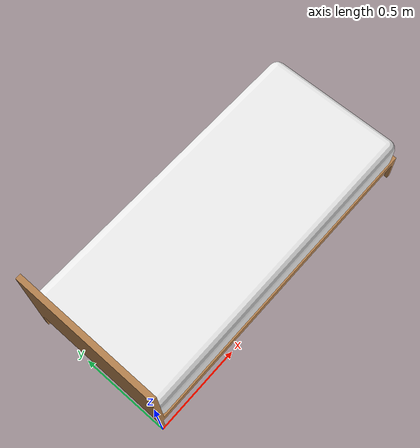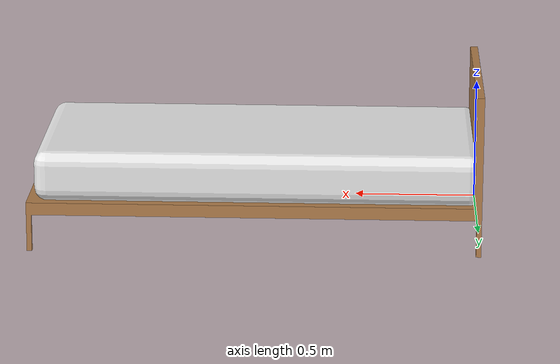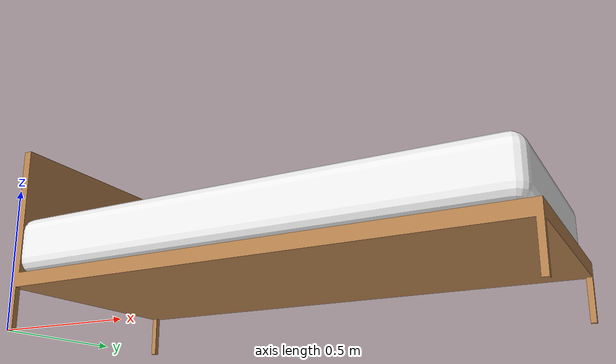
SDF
<sdf version="1.4">
  <model name="bed">
    <static>1</static>
    <link name="link1">

      <collision name="colision1">
        <pose>0 0 0 0 0 0</pose>
        <geometry>
          <mesh>
            <uri>model://bed/meshes/bed_base.stl</uri>
	    <scale> 1 1 1 </scale>
          </mesh>
        </geometry>
        <surface>
          <bounce />
          <friction>
            <ode />
          </friction>
          <contact>
            <ode />
          </contact>
        </surface>
      </collision>

      <visual name="visual1">
        <pose>0 0 0 0 0 0</pose>
        <geometry>
          <mesh>
            <uri>model://bed/meshes/bed_base.stl</uri>
	    <scale> 1 1 1 </scale>
          </mesh>
        </geometry>
        <material>
          <script>
            <uri>file://media/materials/scripts/gazebo.material</uri>
            <name>Gazebo/WoodPallet</name>
          </script>
        </material>
      </visual>

      <velocity_decay>
        <linear>0.000000</linear>
        <angular>0.000000</angular>
      </velocity_decay>
      <self_collide>0</self_collide>
      <kinematic>0</kinematic>
      <gravity>1</gravity>
    </link>

    <link name="link2">

      <collision name="colision2">
        <pose>0 0 0.2 0 0 0</pose>
        <geometry>
          <mesh>
            <uri>model://bed/meshes/bed_quilt.stl</uri>
	    <scale> 1 1 1 </scale>
          </mesh>
        </geometry>
        <surface>
          <bounce />
          <friction>
            <ode />
          </friction>
          <contact>
            <ode />
          </contact>
        </surface>
      </collision>

      <visual name="visual2">
        <pose>0 0 0.2 0 0 0</pose>
        <geometry>
          <mesh>
            <uri>model://bed/meshes/bed_quilt.stl</uri>
	    <scale> 1 1 1 </scale>
          </mesh>
        </geometry>
        <material>
          <script>
            <uri>file://media/materials/scripts/gazebo.material</uri>
            <name>Gazebo/White</name>
          </script>
        </material>
      </visual>

      <velocity_decay>
        <linear>0.000000</linear>
        <angular>0.000000</angular>
      </velocity_decay>
      <self_collide>0</self_collide>
      <kinematic>0</kinematic>
      <gravity>1</gravity>
    </link>

  </model>
</sdf>
